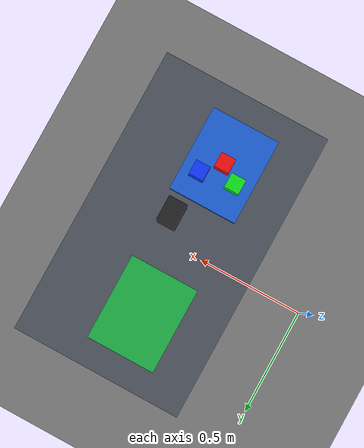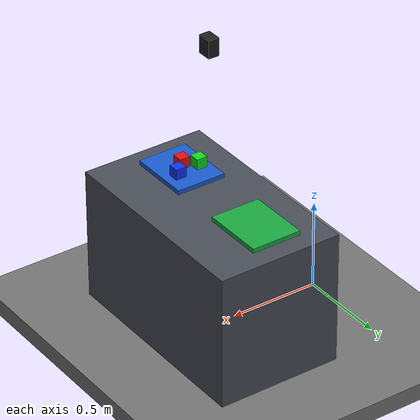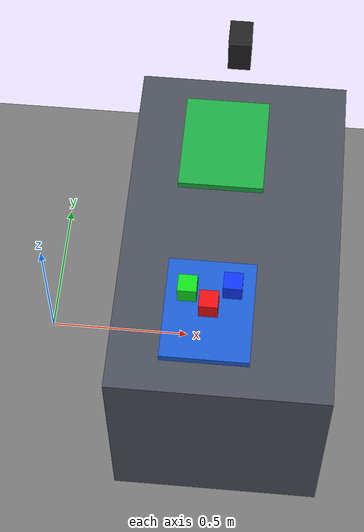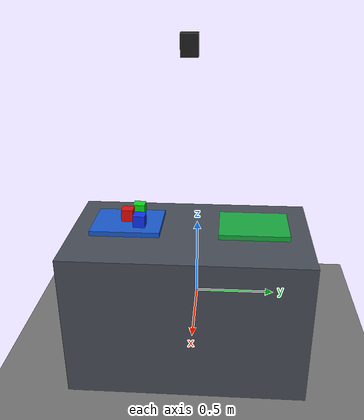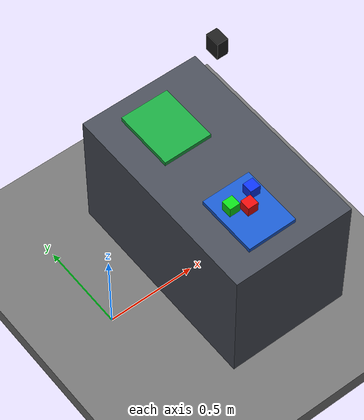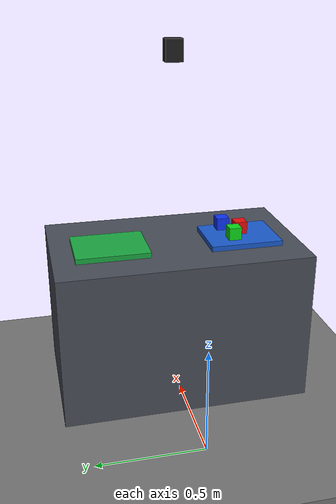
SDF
<?xml version="1.0" ?>
<sdf version="1.9">

  <world name="resilient_cell">
    <!-- GAZEBO SYSTEMS                                            -->

    <plugin
      filename="gz-sim-physics-system"
      name="gz::sim::systems::Physics">
    </plugin>

    <plugin
      filename="gz-sim-user-commands-system"
      name="gz::sim::systems::UserCommands">
    </plugin>

    <plugin
      filename="gz-sim-scene-broadcaster-system"
      name="gz::sim::systems::SceneBroadcaster">
    </plugin>

    <plugin
      filename="gz-sim-sensors-system"
      name="gz::sim::systems::Sensors">

      <render_engine>ogre2</render_engine>

    </plugin>

    <!-- WORLD SETTINGS                                            -->

    <gravity>0 0 -9.81</gravity>

    <physics name="physics" type="ignored">
      <max_step_size>0.001</max_step_size>
      <real_time_factor>1.0</real_time_factor>
    </physics>

    <!-- LIGHT                                                     -->

    <light type="directional" name="sun">
      <cast_shadows>true</cast_shadows>

      <pose>0 0 10 0 0 0</pose>

      <diffuse>0.8 0.8 0.8 1</diffuse>
      <specular>0.2 0.2 0.2 1</specular>

      <direction>-0.5 0.1 -0.9</direction>
    </light>

    <!-- FLOOR                                                     -->

    <model name="factory_floor">

      <static>true</static>

      <link name="floor_link">

        <collision name="floor_collision">
          <geometry>
            <box>
              <size>6 6 0.1</size>
            </box>
          </geometry>
        </collision>

        <visual name="floor_visual">
          <geometry>
            <box>
              <size>6 6 0.1</size>
            </box>
          </geometry>

          <material>
            <ambient>0.35 0.35 0.35 1</ambient>
            <diffuse>0.45 0.45 0.45 1</diffuse>
          </material>

        </visual>

      </link>

      <pose>0 0 -0.05 0 0 0</pose>

    </model>

    <!-- WORK TABLE                                                -->

    <model name="work_table">

      <static>true</static>

      <pose>0.65 0 0.375 0 0 0</pose>

      <link name="table_link">

        <collision name="table_collision">

          <geometry>
            <box>
              <size>0.70 1.20 0.75</size>
            </box>
          </geometry>

        </collision>

        <visual name="table_visual">

          <geometry>
            <box>
              <size>0.70 1.20 0.75</size>
            </box>
          </geometry>

          <material>
            <ambient>0.20 0.22 0.25 1</ambient>
            <diffuse>0.28 0.30 0.34 1</diffuse>
          </material>

        </visual>

      </link>

    </model>

    <!-- SOURCE AREA                                               -->

    <model name="source_area">

      <static>true</static>

      <pose>0.60 -0.32 0.765 0 0 0</pose>

      <link name="source_link">

        <collision name="source_collision">
          <geometry>
            <box>
              <size>0.28 0.35 0.025</size>
            </box>
          </geometry>
        </collision>

        <visual name="source_visual">
          <geometry>
            <box>
              <size>0.28 0.35 0.025</size>
            </box>
          </geometry>

          <material>
            <ambient>0.10 0.25 0.55 1</ambient>
            <diffuse>0.10 0.35 0.80 1</diffuse>
          </material>

        </visual>

      </link>

    </model>

    <!-- TARGET AREA                                               -->

    <model name="target_area">

      <static>true</static>

      <pose>0.60 0.32 0.765 0 0 0</pose>

      <link name="target_link">

        <collision name="target_collision">

          <geometry>
            <box>
              <size>0.28 0.35 0.025</size>
            </box>
          </geometry>

        </collision>

        <visual name="target_visual">

          <geometry>
            <box>
              <size>0.28 0.35 0.025</size>
            </box>
          </geometry>

          <material>
            <ambient>0.10 0.45 0.20 1</ambient>
            <diffuse>0.10 0.65 0.25 1</diffuse>
          </material>

        </visual>

      </link>

    </model>

    <!-- OBJECT 1                                                  -->

    <model name="red_object">

      <static>false</static>

      <pose>0.60 -0.32 0.815 0 0 0</pose>

      <link name="object_link">

        <inertial>
          <mass>0.10</mass>
          <inertia>
            <ixx>0.00004</ixx>
            <iyy>0.00004</iyy>
            <izz>0.00004</izz>
          </inertia>
        </inertial>

        <collision name="collision">

          <geometry>
            <box>
              <size>0.06 0.06 0.06</size>
            </box>
          </geometry>

        </collision>

        <visual name="visual">

          <geometry>
            <box>
              <size>0.06 0.06 0.06</size>
            </box>
          </geometry>

          <material>
            <ambient>0.70 0.05 0.05 1</ambient>
            <diffuse>0.90 0.05 0.05 1</diffuse>
          </material>

        </visual>

      </link>

    </model>

    <!-- OBJECT 2                                                  -->

    <model name="green_object">

      <static>false</static>

      <pose>0.53 -0.27 0.815 0 0 0</pose>

      <link name="object_link">

        <inertial>
          <mass>0.10</mass>
          <inertia>
            <ixx>0.00004</ixx>
            <iyy>0.00004</iyy>
            <izz>0.00004</izz>
          </inertia>
        </inertial>

        <collision name="collision">

          <geometry>
            <box>
              <size>0.06 0.06 0.06</size>
            </box>
          </geometry>

        </collision>

        <visual name="visual">

          <geometry>
            <box>
              <size>0.06 0.06 0.06</size>
            </box>
          </geometry>

          <material>
            <ambient>0.05 0.60 0.10 1</ambient>
            <diffuse>0.05 0.85 0.10 1</diffuse>
          </material>

        </visual>

      </link>

    </model>

    <!-- OBJECT 3                                                  -->

    <model name="blue_object">

      <static>false</static>

      <pose>0.67 -0.25 0.815 0 0 0</pose>

      <link name="object_link">

        <inertial>
          <mass>0.10</mass>
          <inertia>
            <ixx>0.00004</ixx>
            <iyy>0.00004</iyy>
            <izz>0.00004</izz>
          </inertia>
        </inertial>

        <collision name="collision">

          <geometry>
            <box>
              <size>0.06 0.06 0.06</size>
            </box>
          </geometry>

        </collision>

        <visual name="visual">

          <geometry>
            <box>
              <size>0.06 0.06 0.06</size>
            </box>
          </geometry>

          <material>
            <ambient>0.05 0.15 0.70 1</ambient>
            <diffuse>0.05 0.20 0.95 1</diffuse>
          </material>

        </visual>

      </link>

    </model>
    <!-- OVERHEAD RGB-D CAMERA                                     -->

    <model name="overhead_rgbd_camera">

      <static>true</static>

      <!--
          Camera is positioned approximately 0.9 m above
          the table and points vertically downward.
      -->

      <pose>0.65 0.0 1.65 0 1.5708 0</pose>

      <link name="camera_link">

        <!-- Camera housing -->
        <visual name="camera_body_visual">

          <geometry>
            <box>
              <size>0.10 0.08 0.06</size>
            </box>
          </geometry>

          <material>
            <ambient>0.08 0.08 0.08 1</ambient>
            <diffuse>0.12 0.12 0.12 1</diffuse>
          </material>

        </visual>

        <!-- RGB-D SENSOR                                          -->

        <sensor
          name="rgbd_sensor"
          type="rgbd_camera">

          <always_on>true</always_on>

          <update_rate>20</update_rate>

          <visualize>true</visualize>

          <topic>rgbd_camera</topic>

          <camera>

            <horizontal_fov>1.20</horizontal_fov>

            <image>

              <width>640</width>
              <height>480</height>

            </image>

            <clip>

              <near>0.10</near>
              <far>4.0</far>

            </clip>

          </camera>

        </sensor>

      </link>

    </model>

  </world>

</sdf>
